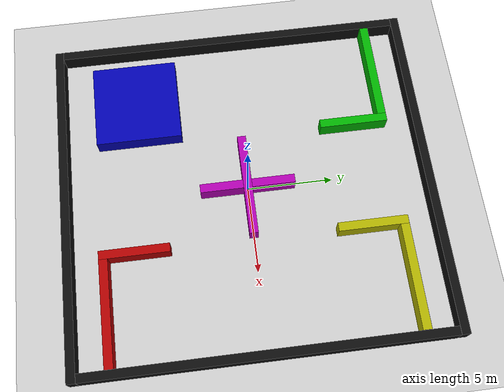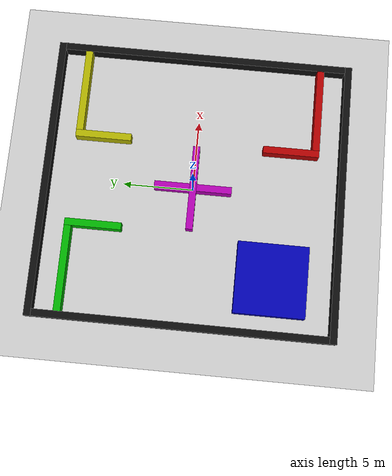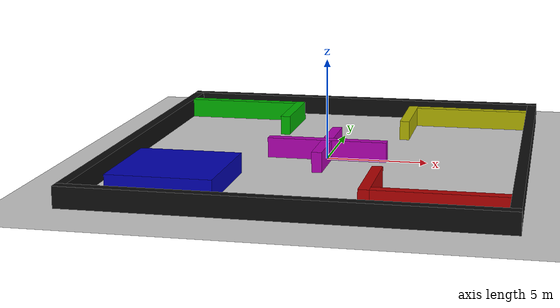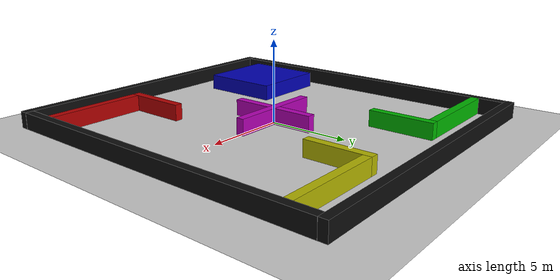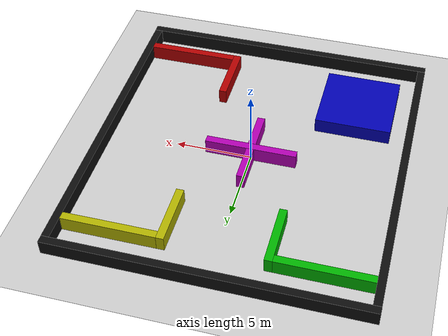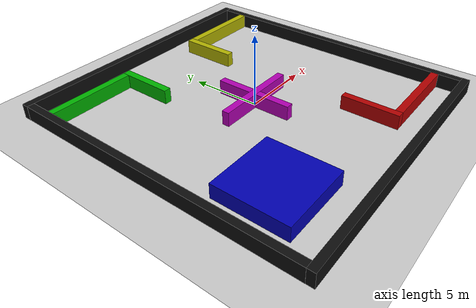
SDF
<sdf version='1.9'>
  <world name='empty'>
    <physics name='1ms' type='ignored'>
      <max_step_size>0.001</max_step_size>
      <real_time_factor>1</real_time_factor>
      <real_time_update_rate>1000</real_time_update_rate>
    </physics>
    <plugin name='gz::sim::systems::Physics' filename='ignition-gazebo-physics-system'/>
    <plugin name='gz::sim::systems::UserCommands' filename='ignition-gazebo-user-commands-system'/>
    <plugin name='gz::sim::systems::SceneBroadcaster' filename='ignition-gazebo-scene-broadcaster-system'/>
    <plugin name='gz::sim::systems::Contact' filename='ignition-gazebo-contact-system'/>
    <gravity>0 0 -9.8</gravity>
    <magnetic_field>6e-06 2.3e-05 -4.2e-05</magnetic_field>
    <atmosphere type='adiabatic'/>
    <scene>
      <ambient>0.4 0.4 0.4 1</ambient>
      <background>0.7 0.7 0.7 1</background>
      <shadows>true</shadows>
    </scene>
    <model name='ground_plane'>
      <static>true</static>
      <link name='link'>
        <collision name='collision'>
          <geometry>
            <plane>
              <normal>0 0 1</normal>
              <size>100 100</size>
            </plane>
          </geometry>
          <surface>
            <friction>
              <ode/>
            </friction>
            <bounce/>
            <contact/>
          </surface>
        </collision>
        <visual name='visual'>
          <geometry>
            <plane>
              <normal>0 0 1</normal>
              <size>100 100</size>
            </plane>
          </geometry>
          <material>
            <ambient>0.8 0.8 0.8 1</ambient>
            <diffuse>0.8 0.8 0.8 1</diffuse>
            <specular>0.8 0.8 0.8 1</specular>
          </material>
        </visual>
        <pose>0 0 0 0 -0 0</pose>
        <inertial>
          <pose>0 0 0 0 -0 0</pose>
          <mass>10000</mass>
          <inertia>
            <ixx>1</ixx>
            <ixy>0</ixy>
            <ixz>0</ixz>
            <iyy>1</iyy>
            <iyz>0</iyz>
            <izz>1</izz>
          </inertia>
        </inertial>
        <enable_wind>false</enable_wind>
      </link>
      <pose>0 0 0 0 -0 0</pose>
      <self_collide>false</self_collide>
    </model>
    <model name='box'>
      <static>true</static>
      <pose>-6.5 8.5 0.5 0 -0 0</pose>
      <link name='box_link'>
        <inertial>
          <inertia>
            <ixx>0.16666</ixx>
            <ixy>0</ixy>
            <ixz>0</ixz>
            <iyy>0.16666</iyy>
            <iyz>0</iyz>
            <izz>0.16666</izz>
          </inertia>
          <mass>10000</mass>
          <pose>0 0 0 0 -0 0</pose>
        </inertial>
        <collision name='box_collision'>
          <geometry>
            <box>
              <size>6 0.5 1</size>
            </box>
          </geometry>
          <surface>
            <friction>
              <ode/>
            </friction>
            <bounce/>
            <contact/>
          </surface>
        </collision>
        <visual name='box_visual'>
          <geometry>
            <box>
              <size>6 0.5 1</size>
            </box>
          </geometry>
          <material>
            <ambient>0.3 0.3 0.3 1</ambient>
            <diffuse>0.0 0.7 0.0 1</diffuse>
            <specular>1 1 1 1</specular>
          </material>
        </visual>
        <pose>0 0 0 0 -0 0</pose>
        <enable_wind>false</enable_wind>
      </link>
      <static>false</static>
      <self_collide>false</self_collide>
    </model>
    <model name='box_0'>
      <static>true</static>
      <pose>-3.25 6.75 0.5 0 0 0</pose>
      <link name='box_link'>
        <inertial>
          <inertia>
            <ixx>0.16666</ixx>
            <ixy>0</ixy>
            <ixz>0</ixz>
            <iyy>0.16666</iyy>
            <iyz>0</iyz>
            <izz>0.16666</izz>
          </inertia>
          <mass>10000</mass>
          <pose>0 0 0 0 -0 0</pose>
        </inertial>
        <collision name='box_collision'>
          <geometry>
            <box>
              <size>0.5 4 1</size>
            </box>
          </geometry>
          <surface>
            <friction>
              <ode/>
            </friction>
            <bounce/>
            <contact/>
          </surface>
        </collision>
        <visual name='box_visual'>
          <geometry>
            <box>
              <size>0.5 4 1</size>
            </box>
          </geometry>
          <material>
            <ambient>0.3 0.3 0.3 1</ambient>
            <diffuse>0.0 0.7 0.0 1</diffuse>
            <specular>1 1 1 1</specular>
          </material>
        </visual>
        <pose>0 0 0 0 -0 0</pose>
        <enable_wind>false</enable_wind>
      </link>
      <static>false</static>
      <self_collide>false</self_collide>
    </model>
    <model name='box_1'>
      <static>true</static>
      <pose>6.5 -8.5 0.5 0 -0 0</pose>
      <link name='box_link'>
        <inertial>
          <inertia>
            <ixx>0.16666</ixx>
            <ixy>0</ixy>
            <ixz>0</ixz>
            <iyy>0.16666</iyy>
            <iyz>0</iyz>
            <izz>0.16666</izz>
          </inertia>
          <mass>10000</mass>
          <pose>0 0 0 0 -0 0</pose>
        </inertial>
        <collision name='box_collision'>
          <geometry>
            <box>
              <size>6 0.5 1</size>
            </box>
          </geometry>
          <surface>
            <friction>
              <ode/>
            </friction>
            <bounce/>
            <contact/>
          </surface>
        </collision>
        <visual name='box_visual'>
          <geometry>
            <box>
              <size>6 0.5 1</size>
            </box>
          </geometry>
          <material>
            <ambient>0.3 0.3 0.3 1</ambient>
            <diffuse>0.7 0.0 0.0 1</diffuse>
            <specular>1 1 1 1</specular>
          </material>
        </visual>
        <pose>0 0 0 0 -0 0</pose>
        <enable_wind>false</enable_wind>
      </link>
      <static>false</static>
      <self_collide>false</self_collide>
    </model>
    <model name='box_2'>
      <static>true</static>
      <pose>3.25 -6.75 0.5 0 0 0</pose>
      <link name='box_link'>
        <inertial>
          <inertia>
            <ixx>0.16666</ixx>
            <ixy>0</ixy>
            <ixz>0</ixz>
            <iyy>0.16666</iyy>
            <iyz>0</iyz>
            <izz>0.16666</izz>
          </inertia>
          <mass>10000</mass>
          <pose>0 0 0 0 -0 0</pose>
        </inertial>
        <collision name='box_collision'>
          <geometry>
            <box>
              <size>0.5 4 1</size>
            </box>
          </geometry>
          <surface>
            <friction>
              <ode/>
            </friction>
            <bounce/>
            <contact/>
          </surface>
        </collision>
        <visual name='box_visual'>
          <geometry>
            <box>
              <size>0.5 4 1</size>
            </box>
          </geometry>
          <material>
            <ambient>0.3 0.3 0.3 1</ambient>
            <diffuse>0.7 0.0 0.0 1</diffuse>
            <specular>1 1 1 1</specular>
          </material>
        </visual>
        <pose>0 0 0 0 -0 0</pose>
        <enable_wind>false</enable_wind>
      </link>
      <static>false</static>
      <self_collide>false</self_collide>
    </model>
    <model name='box_3'>
      <static>true</static>
      <pose>0 0 0.5 0 -0 0</pose>
      <link name='box_link'>
        <inertial>
          <inertia>
            <ixx>0.16666</ixx>
            <ixy>0</ixy>
            <ixz>0</ixz>
            <iyy>0.16666</iyy>
            <iyz>0</iyz>
            <izz>0.16666</izz>
          </inertia>
          <mass>10000</mass>
          <pose>0 0 0 0 -0 0</pose>
        </inertial>
        <collision name='box_collision'>
          <geometry>
            <box>
              <size>6 0.5 1</size>
            </box>
          </geometry>
          <surface>
            <friction>
              <ode/>
            </friction>
            <bounce/>
            <contact/>
          </surface>
        </collision>
        <visual name='box_visual'>
          <geometry>
            <box>
              <size>6 0.5 1</size>
            </box>
          </geometry>
          <material>
            <ambient>0.3 0.3 0.3 1</ambient>
            <diffuse>0.7 0.0 0.7 1</diffuse>
            <specular>1 1 1 1</specular>
          </material>
        </visual>
        <pose>0 0 0 0 -0 0</pose>
        <enable_wind>false</enable_wind>
      </link>
      <static>false</static>
      <self_collide>false</self_collide>
    </model>
    <model name='box_4'>
      <static>true</static>
      <pose>0 1.5 0.5 0 0 0</pose>
      <link name='box_link'>
        <inertial>
          <inertia>
            <ixx>0.16666</ixx>
            <ixy>0</ixy>
            <ixz>0</ixz>
            <iyy>0.16666</iyy>
            <iyz>0</iyz>
            <izz>0.16666</izz>
          </inertia>
          <mass>10000</mass>
          <pose>0 0 0 0 -0 0</pose>
        </inertial>
        <collision name='box_collision'>
          <geometry>
            <box>
              <size>0.5 2.5 1</size>
            </box>
          </geometry>
          <surface>
            <friction>
              <ode/>
            </friction>
            <bounce/>
            <contact/>
          </surface>
        </collision>
        <visual name='box_visual'>
          <geometry>
            <box>
              <size>0.5 2.5 1</size>
            </box>
          </geometry>
          <material>
            <ambient>0.3 0.3 0.3 1</ambient>
            <diffuse>0.7 0.0 0.7 1</diffuse>
            <specular>1 1 1 1</specular>
          </material>
        </visual>
        <pose>0 0 0 0 -0 0</pose>
        <enable_wind>false</enable_wind>
      </link>
      <static>false</static>
      <self_collide>false</self_collide>
    </model>
    <model name='box_5'>
      <static>true</static>
      <pose>0 -1.5 0.5 0 0 0</pose>
      <link name='box_link'>
        <inertial>
          <inertia>
            <ixx>0.16666</ixx>
            <ixy>0</ixy>
            <ixz>0</ixz>
            <iyy>0.16666</iyy>
            <iyz>0</iyz>
            <izz>0.16666</izz>
          </inertia>
          <mass>10000</mass>
          <pose>0 0 0 0 -0 0</pose>
        </inertial>
        <collision name='box_collision'>
          <geometry>
           <box>
              <size>0.5 2.5 1</size>
            </box>
          </geometry>
          <surface>
            <friction>
              <ode/>
            </friction>
            <bounce/>
            <contact/>
          </surface>
        </collision>
        <visual name='box_visual'>
          <geometry>
            <box>
              <size>0.5 2.5 1</size>
            </box>
          </geometry>
          <material>
            <ambient>0.3 0.3 0.3 1</ambient>
            <diffuse>0.7 0.0 0.7 1</diffuse>
            <specular>1 1 1 1</specular>
          </material>
        </visual>
        <pose>0 0 0 0 -0 0</pose>
        <enable_wind>false</enable_wind>
      </link>
      <static>false</static>
      <self_collide>false</self_collide>
    </model>
    <model name='box_6'>
      <static>true</static>
      <pose>6.5 8.5 0.5 0 -0 0</pose>
      <link name='box_link'>
        <inertial>
          <inertia>
            <ixx>0.16666</ixx>
            <ixy>0</ixy>
            <ixz>0</ixz>
            <iyy>0.16666</iyy>
            <iyz>0</iyz>
            <izz>0.16666</izz>
          </inertia>
          <mass>10000</mass>
          <pose>0 0 0 0 -0 0</pose>
        </inertial>
        <collision name='box_collision'>
          <geometry>
            <box>
              <size>6 0.5 1</size>
            </box>
          </geometry>
          <surface>
            <friction>
              <ode/>
            </friction>
            <bounce/>
            <contact/>
          </surface>
        </collision>
        <visual name='box_visual'>
          <geometry>
            <box>
              <size>6 0.5 1</size>
            </box>
          </geometry>
          <material>
            <ambient>0.3 0.3 0.3 1</ambient>
            <diffuse>0.7 0.7 0.0 1</diffuse>
            <specular>1 1 1 1</specular>
          </material>
        </visual>
        <pose>0 0 0 0 -0 0</pose>
        <enable_wind>false</enable_wind>
      </link>
      <static>false</static>
      <self_collide>false</self_collide>
    </model>
    <model name='box_7'>
      <static>true</static>
      <pose>3.25 6.75 0.5 0 0 0</pose>
      <link name='box_link'>
        <inertial>
          <inertia>
            <ixx>0.16666</ixx>
            <ixy>0</ixy>
            <ixz>0</ixz>
            <iyy>0.16666</iyy>
            <iyz>0</iyz>
            <izz>0.16666</izz>
          </inertia>
          <mass>10000</mass>
          <pose>0 0 0 0 -0 0</pose>
        </inertial>
        <collision name='box_collision'>
          <geometry>
            <box>
              <size>0.5 4 1</size>
            </box>
          </geometry>
          <surface>
            <friction>
              <ode/>
            </friction>
            <bounce/>
            <contact/>
          </surface>
        </collision>
        <visual name='box_visual'>
          <geometry>
            <box>
              <size>0.5 4 1</size>
            </box>
          </geometry>
          <material>
            <ambient>0.3 0.3 0.3 1</ambient>
            <diffuse>0.7 0.7 0.0 1</diffuse>
            <specular>1 1 1 1</specular>
          </material>
        </visual>
        <pose>0 0 0 0 -0 0</pose>
        <enable_wind>false</enable_wind>
      </link>
      <static>false</static>
      <self_collide>false</self_collide>
    </model>
    <model name='box_8'>
      <static>true</static>
      <pose>0 10.5 0.5 0 -0 0</pose>
      <link name='box_link'>
        <inertial>
          <inertia>
            <ixx>0.16666</ixx>
            <ixy>0</ixy>
            <ixz>0</ixz>
            <iyy>0.16666</iyy>
            <iyz>0</iyz>
            <izz>0.16666</izz>
          </inertia>
          <mass>10000</mass>
          <pose>0 0 0 0 -0 0</pose>
        </inertial>
        <collision name='box_collision'>
          <geometry>
            <box>
              <size>20 0.5 1</size>
            </box>
          </geometry>
          <surface>
            <friction>
              <ode/>
            </friction>
            <bounce/>
            <contact/>
          </surface>
        </collision>
        <visual name='box_visual'>
          <geometry>
            <box>
              <size>20 0.5 1</size>
            </box>
          </geometry>
          <material>
            <ambient>0.3 0.3 0.3 1</ambient>
            <diffuse>0.05 0.05 0.05 1</diffuse>
            <specular>1 1 1 1</specular>
          </material>
        </visual>
        <pose>0 0 0 0 -0 0</pose>
        <enable_wind>false</enable_wind>
      </link>
      <static>false</static>
      <self_collide>false</self_collide>
    </model>
    <model name='box_9'>
      <static>true</static>
      <pose>0 -10.5 0.5 0 -0 0</pose>
      <link name='box_link'>
        <inertial>
          <inertia>
            <ixx>0.16666</ixx>
            <ixy>0</ixy>
            <ixz>0</ixz>
            <iyy>0.16666</iyy>
            <iyz>0</iyz>
            <izz>0.16666</izz>
          </inertia>
          <mass>10000</mass>
          <pose>0 0 0 0 -0 0</pose>
        </inertial>
        <collision name='box_collision'>
          <geometry>
            <box>
              <size>20 0.5 1</size>
            </box>
          </geometry>
          <surface>
            <friction>
              <ode/>
            </friction>
            <bounce/>
            <contact/>
          </surface>
        </collision>
        <visual name='box_visual'>
          <geometry>
            <box>
              <size>20 0.5 1</size>
            </box>
          </geometry>
          <material>
            <ambient>0.3 0.3 0.3 1</ambient>
            <diffuse>0.05 0.05 0.05 1</diffuse>
            <specular>1 1 1 1</specular>
          </material>
        </visual>
        <pose>0 0 0 0 -0 0</pose>
        <enable_wind>false</enable_wind>
      </link>
      <static>false</static>
      <self_collide>false</self_collide>
    </model>
    <model name='box_10'>
      <static>true</static>
      <pose>9.75 0 0.5 0 0 1.57</pose>
      <link name='box_link'>
        <inertial>
          <inertia>
            <ixx>0.16666</ixx>
            <ixy>0</ixy>
            <ixz>0</ixz>
            <iyy>0.16666</iyy>
            <iyz>0</iyz>
            <izz>0.16666</izz>
          </inertia>
          <mass>10000</mass>
          <pose>0 0 0 0 -0 0</pose>
        </inertial>
        <collision name='box_collision'>
          <geometry>
            <box>
              <size>20.5 0.5 1</size>
            </box>
          </geometry>
          <surface>
            <friction>
              <ode/>
            </friction>
            <bounce/>
            <contact/>
          </surface>
        </collision>
        <visual name='box_visual'>
          <geometry>
            <box>
              <size>20.5 0.5 1</size>
            </box>
          </geometry>
          <material>
            <ambient>0 0 0 1</ambient>
            <diffuse>0.05 0.05 0.05 1</diffuse>
            <specular>1 1 1 1</specular>
          </material>
        </visual>
        <pose>0 0 0 0 -0 0</pose>
        <enable_wind>false</enable_wind>
      </link>
      <static>false</static>
      <self_collide>false</self_collide>
    </model>
    <model name='box_11'>
      <static>true</static>
      <pose>-9.75 0 0.5 0 0 1.57</pose>
      <link name='box_link'>
        <inertial>
          <inertia>
            <ixx>0.16666</ixx>
            <ixy>0</ixy>
            <ixz>0</ixz>
            <iyy>0.16666</iyy>
            <iyz>0</iyz>
            <izz>0.16666</izz>
          </inertia>
          <mass>10000</mass>
          <pose>0 0 0 0 -0 0</pose>
        </inertial>
        <collision name='box_collision'>
          <geometry>
            <box>
              <size>20.5 0.5 1</size>
            </box>
          </geometry>
          <surface>
            <friction>
              <ode/>
            </friction>
            <bounce/>
            <contact/>
          </surface>
        </collision>
        <visual name='box_visual'>
          <geometry>
            <box>
              <size>20.5 0.5 1</size>
            </box>
          </geometry>
          <material>
            <ambient>0.3 0.3 0.3 1</ambient>
            <diffuse>0.05 0.05 0.05 1</diffuse>
            <specular>1 1 1 1</specular>
          </material>
        </visual>
        <pose>0 0 0 0 -0 0</pose>
        <enable_wind>false</enable_wind>
      </link>
      <static>false</static>
      <self_collide>false</self_collide>
    </model>
    <model name='box_12'>
      <static>true</static>
      <pose>-6 -6 0.5 0 0 1.57</pose>
      <link name='box_link'>
        <inertial>
          <inertia>
            <ixx>0.16666</ixx>
            <ixy>0</ixy>
            <ixz>0</ixz>
            <iyy>0.16666</iyy>
            <iyz>0</iyz>
            <izz>0.16666</izz>
          </inertia>
          <mass>10000</mass>
          <pose>0 0 0 0 -0 0</pose>
        </inertial>
        <collision name='box_collision'>
          <geometry>
            <box>
              <size>5 5 1</size>
            </box>
          </geometry>
          <surface>
            <friction>
              <ode/>
            </friction>
            <bounce/>
            <contact/>
          </surface>
        </collision>
        <visual name='box_visual'>
          <geometry>
            <box>
              <size>5 5 1</size>
            </box>
          </geometry>
          <material>
            <ambient>0.3 0.3 0.3 1</ambient>
            <diffuse>0.0 0.0 0.7 1</diffuse>
            <specular>1 1 1 1</specular>
          </material>
        </visual>
        <pose>0 0 0 0 -0 0</pose>
        <enable_wind>false</enable_wind>
      </link>
      <static>false</static>
      <self_collide>false</self_collide>
    </model>
    <light name='sun' type='directional'>
      <pose>0 0 10 0 -0 0</pose>
      <cast_shadows>true</cast_shadows>
      <intensity>1</intensity>
      <direction>-0.5 0.1 -0.9</direction>
      <diffuse>0.8 0.8 0.8 1</diffuse>
      <specular>0.2 0.2 0.2 1</specular>
      <attenuation>
        <range>1000</range>
        <linear>0.01</linear>
        <constant>0.90000000000000002</constant>
        <quadratic>0.001</quadratic>
      </attenuation>
      <spot>
        <inner_angle>0</inner_angle>
        <outer_angle>0</outer_angle>
        <falloff>0</falloff>
      </spot>
    </light>
  </world>
</sdf>
